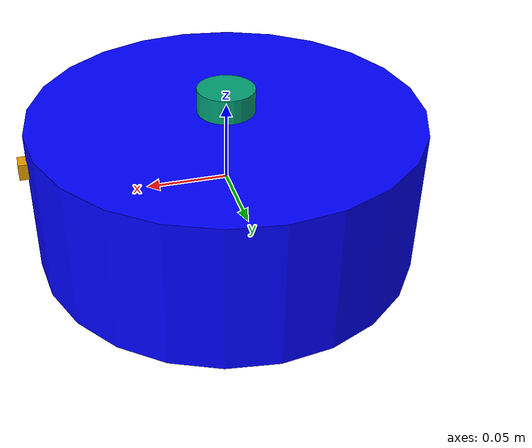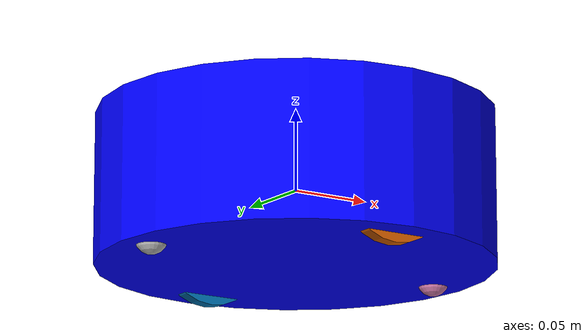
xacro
<?xml version="1.0"?>
<robot name="cylinder" xmlns:xacro="http://ros.org/wiki/xacro">

 <!-- Define robot constants -->
 <xacro:property name="base_radius" value="0.12"/>
 <xacro:property name="base_length" value="0.093"/>

 <!-- Robot Base -->
 <link name="base_link">
  <inertial>
   <origin xyz="0 0 0" rpy="0 0 0"/>
   <mass value="1.0"/>
   <inertia ixx="0.001" ixy="0.0" ixz="0.0" iyy="0.001" iyz="0.0" izz="0.001"/>
  </inertial>
  <visual>
   <geometry>
    <cylinder length="${base_length}" radius="${base_radius}"/>
   </geometry>
   <material name="blue">
    <color rgba="0.0 0.0 1.0 1.0"/>
   </material>
  </visual>
  <collision>
   <geometry>
    <cylinder length="${base_length}" radius="${base_radius}"/>
   </geometry>
  </collision>
 </link>

 <link name="base_footprint" />

 <joint name="base_joint" type="fixed">
  <parent link="base_link"/>
  <child link="base_footprint"/>
  <origin xyz="0 0 -0.052069" rpy="0 0 0"/>
 </joint>

 <joint name="lidar_joint" type="fixed">
  <parent link="base_link"/>
  <child link="base_scan"/>
  <origin xyz="0 0 0.0539" rpy="0 0 0"/>
 </joint>
 <link name="base_scan">
  <inertial>
   <origin xyz="0 0 0" rpy="0 0 0"/>
   <mass value="1.0"/>
   <inertia ixx="0.001" ixy="0.0" ixz="0.0" iyy="0.001" iyz="0.0" izz="0.001"/>
  </inertial>
  <visual>
   <geometry>
    <cylinder length="0.0152" radius="0.017645"/>
   </geometry>
  </visual>
  <collision>
   <geometry>
    <cylinder length="0.0152" radius="0.017645"/>
   </geometry>
  </collision>
 </link>

 <joint name="imu_joint" type="fixed">
  <parent link="base_link"/>
  <child link="imu_link"/>
  <origin xyz="0 0 0.000569" rpy="0 0 0"/>
 </joint>
 <link name="imu_link">
  <inertial>
   <origin xyz="0 0 0" rpy="0 0 0"/>
   <mass value="1.0"/>
   <inertia ixx="0.001" ixy="0.0" ixz="0.0" iyy="0.001" iyz="0.0" izz="0.001"/>
  </inertial>
  <visual>
   <geometry>
    <box size="0.01 0.01 0.01"/>
   </geometry>
  </visual>
  <collision>
   <geometry>
    <box size="0.01 0.01 0.01"/>
   </geometry>
  </collision>
 </link>
 <gazebo reference="imu_link">
  <sensor name="imu_sensor" type="imu">
   <plugin filename="libgazebo_ros_imu_sensor.so" name="imu_plugin">
    <ros>
     <namespace>/demo</namespace>
     <remapping>~/out:=imu</remapping>
    </ros>
    <initial_orientation_as_reference>false</initial_orientation_as_reference>
   </plugin>
   <always_on>true</always_on>
   <update_rate>100</update_rate>
   <visualize>true</visualize>
   <imu>
    <angular_velocity>
     <x>
      <noise type="gaussian">
       <mean>0.0</mean>
       <stddev>2e-4</stddev>
       <bias_mean>0.000075</bias_mean>
       <bias_stddev>0.0000008</bias_stddev>
      </noise>
     </x>
     <y>
      <noise type="gaussian">
       <mean>0.0</mean>
       <stddev>2e-4</stddev>
       <bias_mean>0.0000075</bias_mean>
       <bias_stddev>0.000008</bias_stddev>
      </noise>
     </y>
     <z>
      <noise type="gaussian">
       <mean>0.0</mean>
       <stddev>2e-4</stddev>
       <bias_mean>0.0000075</bias_mean>
       <bias_stddev>0.000008</bias_stddev>
      </noise>
     </z>
    </angular_velocity>
    <linear_acceleration>
     <x>
      <noise type="gaussian">
       <mean>0.0</mean>
       <stddev>1.7e-2</stddev>
       <bias_mean>0.1</bias_mean>
       <bias_stddev>0.001</bias_stddev>
      </noise>
     </x>
     <y>
      <noise type="gaussian">
       <mean>0.0</mean>
       <stddev>1.7e-2</stddev>
       <bias_mean>0.1</bias_mean>
       <bias_stddev>0.001</bias_stddev>
      </noise>
     </y>
     <z>
      <noise type="gaussian">
       <mean>0.0</mean>
       <stddev>1.7e-2</stddev>
       <bias_mean>0.1</bias_mean>
       <bias_stddev>0.001</bias_stddev>
      </noise>
     </z>
    </linear_acceleration>
   </imu>
  </sensor>
 </gazebo>

 <joint name="wheel_left_joint" type="continuous">
  <origin xyz="0 0.09832 -0.016569" rpy="${radians(-90)} 0 0"/>
  <parent link="base_link"/>
  <child link="wheel_left"/>
  <axis xyz="0 0 1"/>
 </joint>

 <link name="wheel_left">
  <inertial>
   <origin xyz="0 0 0" rpy="0 0 0"/>
   <mass value="1.0"/>
   <inertia ixx="0.001" ixy="0.0" ixz="0.0" iyy="0.001" iyz="0.0" izz="0.001"/>
  </inertial>
  <visual>
   <geometry>
    <cylinder radius="0.0355" length="0.0085"/>
   </geometry>
  </visual>
  <collision>
   <geometry>
    <cylinder radius="0.0355" length="0.0085"/>
   </geometry>
  </collision>
 </link>

 <joint name="wheel_right_joint" type="continuous">
  <origin xyz="0 -0.09832 -0.016569" rpy="${radians(-90)} 0 0"/>
  <parent link="base_link"/>
  <child link="wheel_right"/>
  <axis xyz="0 0 1"/>
 </joint>

 <link name="wheel_right">
  <inertial>
   <origin xyz="0 0 0" rpy="0 0 0"/>
   <mass value="1.0"/>
   <inertia ixx="0.001" ixy="0.0" ixz="0.0" iyy="0.001" iyz="0.0" izz="0.001"/>
  </inertial>
  <visual>
   <geometry>
    <cylinder radius="0.0355" length="0.0085"/>
   </geometry>
  </visual>
  <collision>
   <geometry>
    <cylinder radius="0.0355" length="0.0085"/>
   </geometry>
  </collision>
 </link>

<gazebo>
  <plugin name='diff_drive' filename='libgazebo_ros_diff_drive.so'>
    <ros>
      <namespace>/demo</namespace>
    </ros>

    <!-- wheels -->
    <left_joint>wheel_left_joint</left_joint>
    <right_joint>wheel_right_joint</right_joint>

    <!-- kinematics -->
    <wheel_separation>0.19664</wheel_separation>
    <wheel_diameter>0.071</wheel_diameter>

    <!-- limits -->
    <max_wheel_torque>20</max_wheel_torque>
    <max_wheel_acceleration>1.0</max_wheel_acceleration>

    <!-- output -->
    <publish_odom>true</publish_odom>
    <publish_odom_tf>false</publish_odom_tf>
    <publish_wheel_tf>true</publish_wheel_tf>

    <odometry_frame>odom</odometry_frame>
    <robot_base_frame>base_link</robot_base_frame>
  </plugin>
</gazebo>

 <joint name="front_ball_joint" type="fixed">
  <origin xyz="0.10 0 -0.042069" rpy="0 0 0"/>
  <parent link="base_link"/>
  <child link="front_ball_link"/>
 </joint>

 <link name="front_ball_link">
  <visual>
   <origin xyz="0 0 0" rpy="0 0 0"/>
   <geometry>
    <sphere radius="0.01"/>
   </geometry>
  </visual>
  <collision>
   <origin xyz="0 0 0" rpy="0 0 0"/>
   <geometry>
    <sphere radius="0.01"/>
   </geometry>
  </collision>
 </link>

 <joint name="back_ball_joint" type="fixed">
  <origin xyz="-0.10 0 -0.042069" rpy="0 0 0"/>
  <parent link="base_link"/>
  <child link="back_ball_link"/>
 </joint>

 <link name="back_ball_link">
  <visual>
   <origin xyz="0 0 0" rpy="0 0 0"/>
   <geometry>
    <sphere radius="0.01"/>
   </geometry>
  </visual>
  <collision>
   <origin xyz="0 0 0" rpy="0 0 0"/>
   <geometry>
    <sphere radius="0.01"/>
   </geometry>
  </collision>
 </link>

 <joint name="camera_joint" type="fixed">
  <parent link="base_link"/>
  <child link="camera"/>
  <origin xyz="0.12 0 0.025" rpy="${radians(-90)} ${radians(0)} ${radians(-90)}"/>
 </joint>

 <link name="camera">
  <visual>
   <geometry>
    <box size="0.01 0.01 0.01"/>
   </geometry>
  </visual>
  <collision>
   <geometry>
    <box size="0.01 0.01 0.01"/>
   </geometry>
  </collision>
 </link>

</robot>
